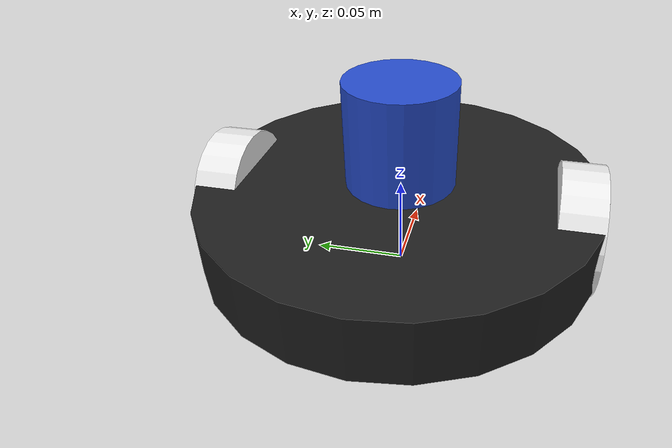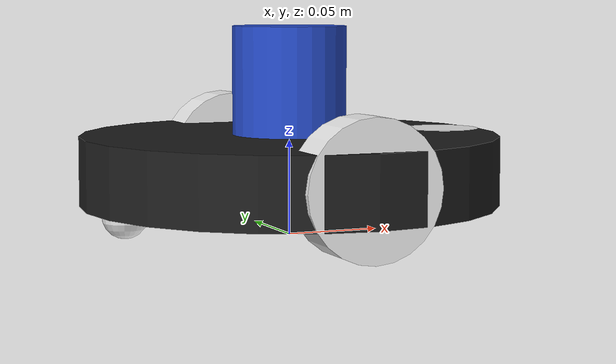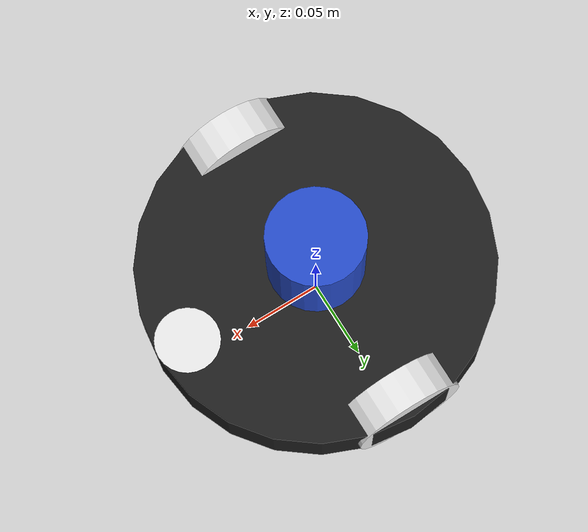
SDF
<?xml version="1.0" ?>
<sdf version="1.5">
  <model name="eced3901bot">
  <static>false</static>

  <!-- ****************** ROBOT BASE FOOTPRINT ***************************  -->
  <pose>0.0 0.0 0.0 0.0 0.0 0.0</pose>
  <link name="base_footprint"/>

  <!-- ********************** ROBOT BASE *********************************  -->
  <link name="base_link">

    <inertial>
        <pose>0 0 0.035 0 0 0</pose>
        <inertia>
          <ixx>7.2397393e-01</ixx>
          <ixy>4.686399e-10</ixy>
          <ixz>-1.09525703e-08</ixz>
          <iyy>7.2397393e-01</iyy>
          <iyz>2.8582649e-09</iyz>
          <izz>6.53050163e-01</izz>
        </inertia>
        <mass>8.2573504e-01</mass>
    </inertial>

    <collision name="base_collision">
      <pose>0 0 0.2 0 0 0</pose>
      <geometry>
        <box>
          <size>0.22 0.22 0.11</size>
        </box>
      </geometry>
    </collision>

    <visual name="base_visual">
      <pose>0 0 0.035 0 0 0</pose>
      <geometry>
        <cylinder>
          <radius>0.11</radius>
          <length>0.0364</length>
        </cylinder>
      </geometry>
      <material>
            <script>
              <uri>file://media/materials/scripts/gazebo.material</uri>
              <name>Gazebo/Black</name>
            </script>
      </material>
    </visual>

    <visual name="base_pointfwd">
      <pose>0.09 0 0.053 0 0 0</pose>
      <geometry>
        <cylinder>
          <radius>0.02</radius>
          <length>0.001</length>
        </cylinder>
      </geometry>
      <material>
            <script>
              <uri>file://media/materials/scripts/gazebo.material</uri>
              <name>Gazebo/White</name>
            </script>
      </material>
    </visual>
  </link>

  <!-- *********************** IMU SENSOR SETUP **************************  -->
  <link name="imu_link">
    <gravity>true</gravity>
    <sensor name="bmb_imu" type="imu">
      <always_on>true</always_on>
      <update_rate>100</update_rate>
      <visualize>true</visualize>
      <imu>
        <orientation>
          <x>
            <noise type="gaussian">
              <mean>0.0</mean>
              <stddev>2e-3</stddev>
            </noise>
          </x>
          <y>
            <noise type="gaussian">
              <mean>0.0</mean>
              <stddev>2e-3</stddev>
            </noise>
          </y>
          <z>
            <noise type="gaussian">
              <mean>0.0</mean>
              <stddev>2e-3</stddev>
            </noise>
          </z>
        </orientation>
        <angular_velocity>
          <x>
            <noise type="gaussian">
              <mean>0.0</mean>
              <stddev>2e-4</stddev>
            </noise>
          </x>
          <y>
            <noise type="gaussian">
              <mean>0.0</mean>
              <stddev>2e-4</stddev>
            </noise>
          </y>
          <z>
            <noise type="gaussian">
              <mean>0.0</mean>
              <stddev>2e-4</stddev>
            </noise>
          </z>
        </angular_velocity>
        <linear_acceleration>
          <x>
            <noise type="gaussian">
              <mean>0.0</mean>
              <stddev>1.7e-2</stddev>
            </noise>
          </x>
          <y>
            <noise type="gaussian">
              <mean>0.0</mean>
              <stddev>1.7e-2</stddev>
            </noise>
          </y>
          <z>
            <noise type="gaussian">
              <mean>0.0</mean>
              <stddev>1.7e-2</stddev>
            </noise>
          </z>
        </linear_acceleration>
      </imu>
      <plugin name="basic_mobile_bot_imu" filename="libgazebo_ros_imu_sensor.so">
        <initial_orientation_as_reference>false</initial_orientation_as_reference>
        <frame_name>imu_link</frame_name>
        <ros>
          <namespace>/imu</namespace>
          <remapping>~/out:=data</remapping>
        </ros>
      </plugin>
    </sensor>
  </link>

  <!-- ****************************** LIDAR *****************************    -->
  <link name="lidar_link">
    <inertial>
      <pose>0 0 0.0815 0 0 0</pose>
      <inertia>
        <ixx>0.001</ixx>
        <ixy>0.000</ixy>
        <ixz>0.000</ixz>
        <iyy>0.001</iyy>
        <iyz>0.000</iyz>
        <izz>0.001</izz>
      </inertia>
      <mass>0.114</mass>
    </inertial>

    <collision name="lidar_collision">
      <pose>0 0 0.0815 0 0 0</pose>
      <geometry>
        <cylinder>
          <radius>0.030</radius>
          <length>0.057</length>
        </cylinder>
      </geometry>
    </collision>

    <visual name="lidar_visual">
      <pose>0 0 0.0815 0 0 0</pose>
      <geometry>
        <cylinder>
          <radius>0.030</radius>
          <length>0.057</length>
        </cylinder>
      </geometry>
      <material>
            <script>
              <uri>file://media/materials/scripts/gazebo.material</uri>
              <name>Gazebo/Blue</name>
            </script>
      </material>
    </visual>

    <sensor name="lidar" type="ray">
      <pose>0 0 0.11 0 0 0</pose>
      <always_on>true</always_on>
      <visualize>true</visualize>
      <update_rate>5</update_rate>
      <ray>
        <scan>
          <horizontal>
            <samples>360</samples>
            <resolution>1.000000</resolution>
            <min_angle>0.000000</min_angle>
            <max_angle>6.280000</max_angle>
          </horizontal>
        </scan>
        <range>
          <min>0.12</min>
          <max>5.0</max>
          <resolution>0.015</resolution>
        </range>
        <noise>
          <type>gaussian</type>
          <mean>0.0</mean>
          <stddev>0.01</stddev>
        </noise>
      </ray>
      <plugin name="scan" filename="libgazebo_ros_ray_sensor.so">
        <ros>
          <remapping>~/out:=scan</remapping>
        </ros>
        <output_type>sensor_msgs/LaserScan</output_type>
        <frame_name>lidar_link</frame_name>
      </plugin>
    </sensor>
  </link>

  <!-- *********************** DRIVE WHEELS ******************************  -->
  <link name="drivewhl_l_link">
    <pose>0 0.095 0.035 0 1.570796 1.570796</pose>

    <inertial>
        <inertia>
          <ixx>1.8158194e-03</ixx>
          <ixy>-9.3392e-12</ixy>
          <ixz>1.04909e-11</ixz>
          <iyy>3.2922126e-03</iyy>
          <iyz>5.75694e-11</iyz>
          <izz>1.8158194e-03</izz>
        </inertia>
        <mass>2.8498940e-02</mass>
    </inertial>

    <collision name="drivewhl_l_collision">
      <geometry>
        <cylinder>
          <radius>0.035</radius>
          <length>0.023</length>
        </cylinder>
      </geometry>
    </collision>

    <visual name="drivewhl_l_visual">
      <geometry>
        <cylinder>
          <radius>0.035</radius>
          <length>0.023</length>
        </cylinder>
      </geometry>
      <material>
            <script>
              <uri>file://media/materials/scripts/gazebo.material</uri>
              <name>Gazebo/White</name>
            </script>
      </material>
    </visual>
  </link>

  <link name="drivewhl_r_link">
    <pose>0 -0.095 0.035 0 1.570796 1.570796</pose>

    <inertial>
        <inertia>
          <ixx>1.8158194e-03</ixx>
          <ixy>-9.3392e-12</ixy>
          <ixz>1.04909e-11</ixz>
          <iyy>3.2922126e-03</iyy>
          <iyz>5.75694e-11</iyz>
          <izz>1.8158194e-03</izz>
        </inertia>
        <mass>2.8498940e-02</mass>
    </inertial>

    <collision name="drivewhl_r_collision">
      <geometry>
        <cylinder>
          <radius>0.035</radius>
          <length>0.023</length>
        </cylinder>
      </geometry>
    </collision>

    <visual name="drivewhl_r_visual">
      <geometry>
        <cylinder>
          <radius>0.035</radius>
          <length>0.023</length>
        </cylinder>
      </geometry>
      <material>
            <script>
              <uri>file://media/materials/scripts/gazebo.material</uri>
              <name>Gazebo/White</name>
            </script>
      </material>
    </visual>
  </link>

  <!-- *********************** CASTER WHEELS ******************************  -->
  <link name='front_caster'>
    <pose>0.09 0 0.012 0 0 0</pose>
    <inertial>
      <inertia>
        <ixx>0.001</ixx>
        <ixy>0.000</ixy>
        <ixz>0.000</ixz>
        <iyy>0.001</iyy>
        <iyz>0.000</iyz>
        <izz>0.001</izz>
      </inertia>
      <mass>0.005</mass>
    </inertial>
    <collision name='collision'>
      <geometry>
        <sphere>
          <radius>0.012</radius>
        </sphere>
      </geometry>
      <surface>
        <friction>
          <ode>
            <mu>0.01</mu>
            <mu2>0.01</mu2>
            <slip1>1.0</slip1>
            <slip2>1.0</slip2>
          </ode>
        </friction>
      </surface>
    </collision>
    <visual name="front_caster_visual">
      <geometry>
        <sphere>
          <radius>0.012</radius>
        </sphere>
      </geometry>
      <material>
            <script>
              <uri>file://media/materials/scripts/gazebo.material</uri>
              <name>Gazebo/White</name>
            </script>
      </material>
    </visual>
  </link>

  <link name='back_caster'>
    <pose>-0.09 0 0.015 0 0 0</pose>
    <inertial>
      <inertia>
        <ixx>0.001</ixx>
        <ixy>0.000</ixy>
        <ixz>0.000</ixz>
        <iyy>0.001</iyy>
        <iyz>0.000</iyz>
        <izz>0.001</izz>
      </inertia>
      <mass>0.005</mass>
    </inertial>
    <collision name='collision'>
      <geometry>
        <sphere>
          <radius>0.012</radius>
        </sphere>
      </geometry>
      <surface>
        <friction>
          <ode>
            <mu>0.01</mu>
            <mu2>0.01</mu2>
            <slip1>1.0</slip1>
            <slip2>1.0</slip2>
          </ode>
        </friction>
      </surface>
    </collision>
    <visual name="back_caster_visual">
      <geometry>
        <sphere>
          <radius>0.012</radius>
        </sphere>
      </geometry>
      <material>
            <script>
              <uri>file://media/materials/scripts/gazebo.material</uri>
              <name>Gazebo/White</name>
            </script>
      </material>
    </visual>
  </link>

  <!-- ************************ JOINTS ***********************************  -->
  <!-- Pose of the joint is the same as the child link frame -->
  <!-- Axis is the axis of rotation relative to the child link frame -->

  <joint name="base_joint" type="fixed">
    <parent>base_footprint</parent>
    <child>base_link</child>
    <pose>0 0 0 0 0 0</pose>
  </joint>

  <joint name="drivewhl_l_joint" type="revolute">
    <parent>base_link</parent>
    <child>drivewhl_l_link</child>
    <pose>0 0 0 0 0 0</pose>
    <axis>
      <xyz>0 0 1</xyz>
    </axis>
  </joint>

  <joint name="drivewhl_r_joint" type="revolute">
    <parent>base_link</parent>
    <child>drivewhl_r_link</child>
    <pose>0 0 0 0 0 0</pose>
    <axis>
      <xyz>0 0 1</xyz>
    </axis>
  </joint>

  <joint name='caster_joint_front' type='ball'>
    <parent>base_link</parent>
    <child>front_caster</child>
    <pose>0 0 0 0 0 0</pose>
  </joint>

  <joint name='caster_joint_back' type='ball'>
    <parent>base_link</parent>
    <child>back_caster</child>
    <pose>0 0 0 0 0 0</pose>
  </joint>

  <joint name="imu_joint" type="fixed">
    <parent>base_link</parent>
    <child>imu_link</child>
    <pose>0 0 0 0 0 0</pose>
  </joint>

  <joint name="lidar_joint" type="fixed">
    <parent>base_link</parent>
    <child>lidar_link</child>
    <pose>0 0 0 0 0 0</pose>
  </joint>

 <!-- *********************** WHEEL ODOMETRY ***************************    -->
  <plugin name="basic_mobile_bot_diff_drive" filename="libgazebo_ros_diff_drive.so">

    <update_rate>30</update_rate>

    <!-- wheels -->
    <left_joint>drivewhl_l_joint</left_joint>
    <right_joint>drivewhl_r_joint</right_joint>

    <!-- kinematics -->
    <wheel_separation>0.19</wheel_separation>
    <wheel_diameter>0.07</wheel_diameter>

    <!-- limits -->
    <max_wheel_torque>20</max_wheel_torque>
    <max_wheel_acceleration>1.0</max_wheel_acceleration>

    <!-- Receive velocity commands on this ROS topic -->
    <command_topic>cmd_vel</command_topic>

    <!-- output -->
    <publish_odom>true</publish_odom>
    <publish_odom_tf>true</publish_odom_tf>
    <publish_wheel_tf>false</publish_wheel_tf>

    <odometry_topic>odom</odometry_topic>
    <odometry_frame>odom</odometry_frame>
    <robot_base_frame>base_footprint</robot_base_frame>

    <!-- Odometry source, 0 for ENCODER, 1 for WORLD, defaults to WORLD -->
    <odometry_source>0</odometry_source>

  </plugin>

 <!-- *********************** JOINT STATE PUBLISHER *********************   -->

  <plugin name="basic_mobile_bot_joint_state" filename="libgazebo_ros_joint_state_publisher.so">
    <ros>
      <remapping>~/out:=joint_states</remapping>
    </ros>
    <update_rate>30</update_rate>
    <joint_name>drivewhl_l_joint</joint_name>
    <joint_name>drivewhl_r_joint</joint_name>
  </plugin>

  </model>
</sdf>
